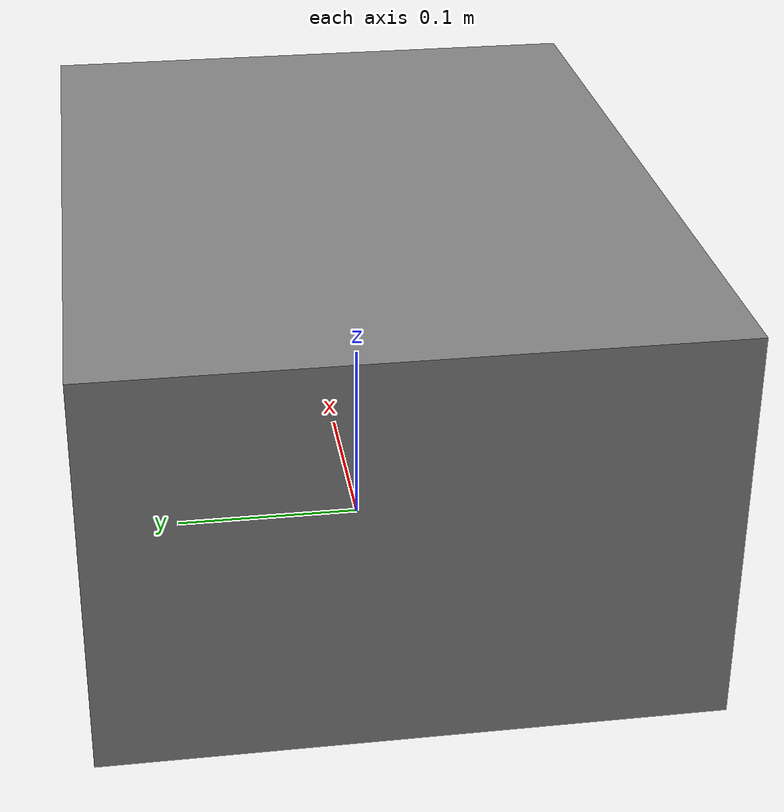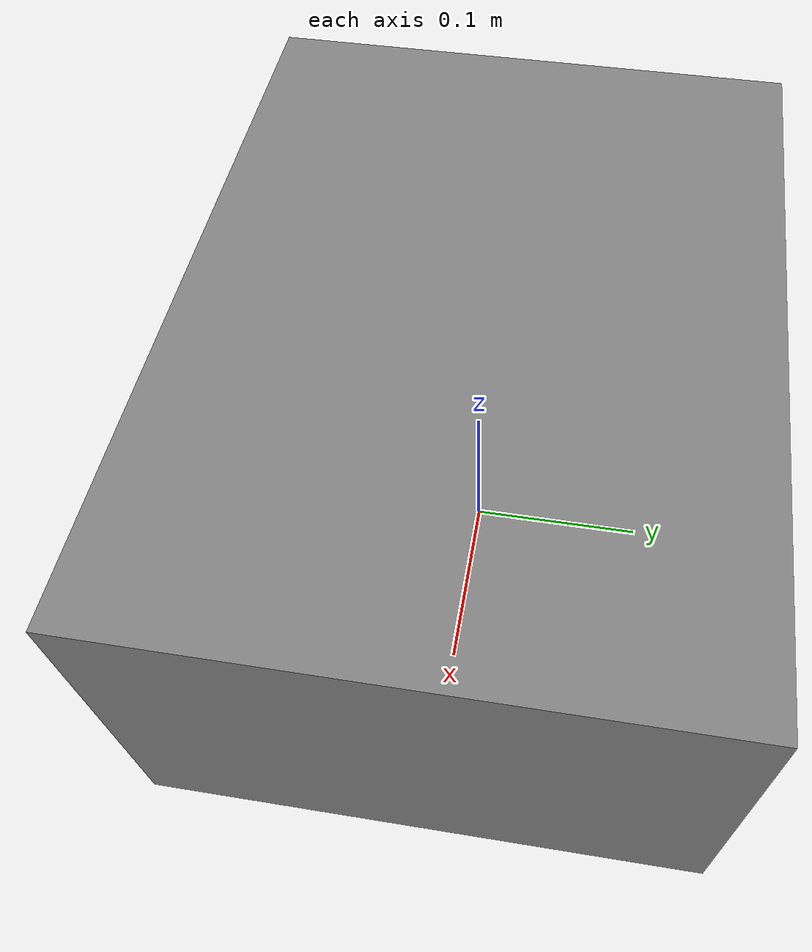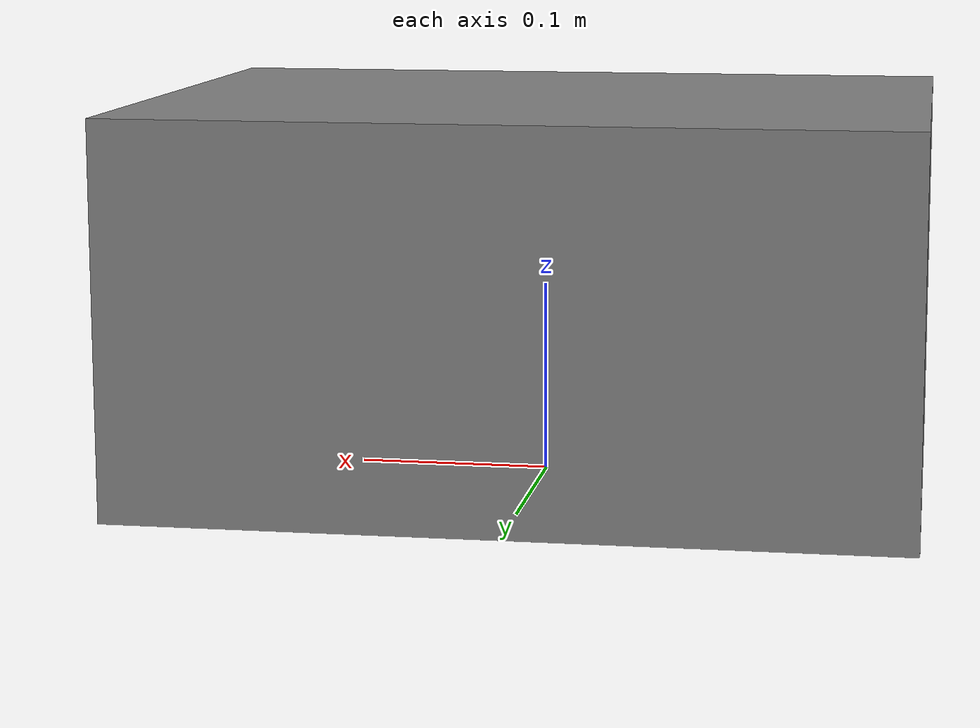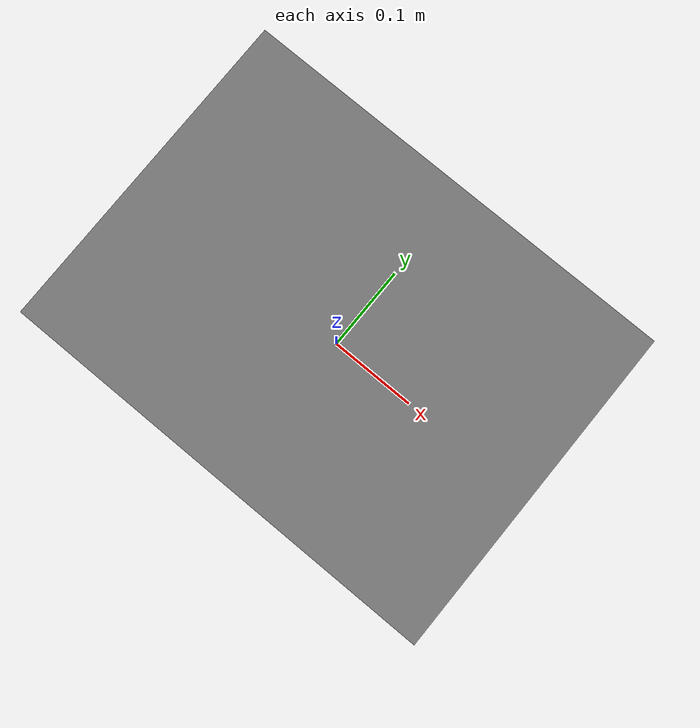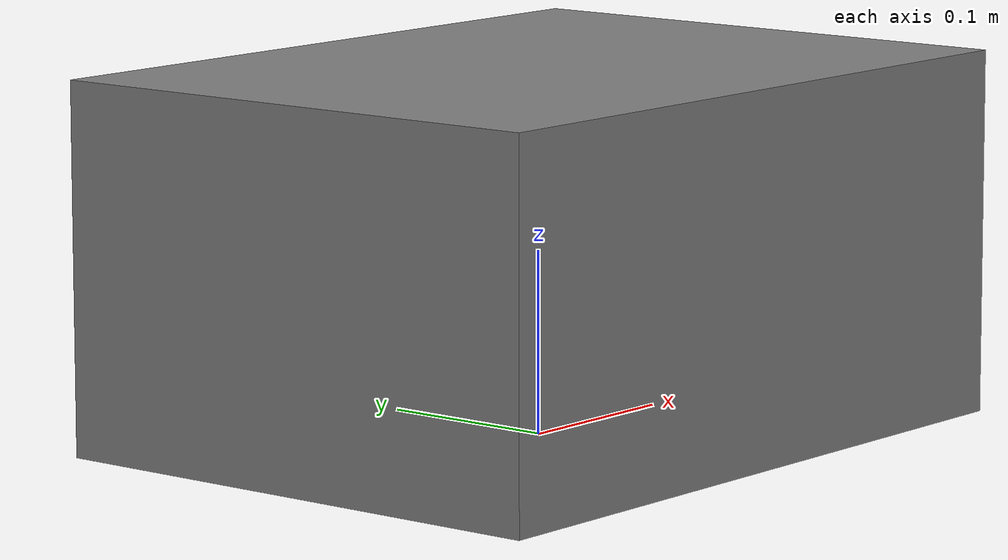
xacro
<?xml version="1.0"?>
<robot
  xmlns:xacro="http://ros.org/wiki/xacro"
  xmlns:controller="http://playerstage.sourceforge.net/gazebo/xmlschema/#controller"
  xmlns:interface="http://playerstage.sourceforge.net/gazebo/xmlschema/#interface"
  xmlns:sensor="http://playerstage.sourceforge.net/gazebo/xmlschema/#sensor"
  name="robot_sensor">

<xacro:property name="M_PI" value="3.14159265359"/>

<link name="base_footprint">
</link>

<link name="base_link">
  <visual>
    <origin xyz="0 0 0" rpy="0 0 0" />
    <geometry>
      <box size="0.4 0.3 0.2"/>
    </geometry>
    <material name="silver" >
      <color rgba="0.5 0.5 0.5 1" />
    </material>
  </visual>
  <collision>
    <origin xyz="0 0 0" rpy="0 0 0" />
    <geometry>
      <box size="0.4 0.3 0.2"/>
    </geometry>
  </collision>
  <inertial>
      <mass value="1.0" />
      <origin xyz="0 0 0" />
      <inertia ixx="${0.0833333 * 1.0 * (0.3*0.3 + 0.2*0.2)}" ixy="0.0" ixz="0.0"
        iyy="${0.0833333 * 1.0 * (0.4*0.4 + 0.2*0.2)}" iyz="0.0"
        izz="${0.0833333 * 1.0 * (0.4*0.4 + 0.3*0.3)}" />
    </inertial>
</link>

<joint name="base_to_bf_joint" type="fixed">
  <parent link="base_footprint" />
  <child link="base_link" />
  <origin xyz="0 0 0.1" />
</joint>

<!-- 2D LASER -->
<link name="laser2d">
</link>

<joint name="laser2d_to_base_joint" type="fixed">
  <parent link="base_link" />
  <child link="laser2d" />
  <origin xyz="0 0 0.2" />
</joint>

<gazebo reference="laser2d">
    <sensor type="rmagine_optix_spherical" name="laser2d">
      <pose>0 0 0 0 0 0</pose>
      <always_on>true</always_on>
      <update_rate>60</update_rate>
      <visualize>false</visualize>
      <pre_alloc_mem>true</pre_alloc_mem>

      <ray>
        <scan>
          <horizontal>
            <min_angle>${-M_PI}</min_angle>
            <increment>${1.0 * M_PI / 180.0}</increment>
            <samples>360</samples>
          </horizontal>
        </scan>

        <range>
          <min>0.0</min>
          <max>10.0</max>
        </range>

        <noise>
          <type>gaussian</type>
          <mean>0.0</mean>
          <stddev>0.01</stddev>
        </noise>

      </ray>

      <plugin name="rmagine_ros_laser2d" filename="librmagine_optix_ros_gzplugin.so">
          <frame>laser2d</frame>
          <outputs>
            <output name="scan">
              <msg>sensor_msgs/LaserScan</msg>
              <topic>laser2d/scan</topic>
            </output>

            <output name="pcl">
              <msg>sensor_msgs/PointCloud</msg>
              <topic>laser2d/pcl</topic>
            </output>
          </outputs>
      </plugin>
    </sensor>
</gazebo>

<!-- 3D LASER -->
<link name="laser3d">
</link>

<joint name="laser3d_to_base_joint" type="fixed">
  <parent link="base_link" />
  <child link="laser3d" />
  <origin xyz="0 0 1.0" />
</joint>

<gazebo reference="laser3d">
    <sensor type="rmagine_optix_spherical" name="laser3d">
      <pose>0 0 0 0 0 0</pose>
      <always_on>true</always_on>
      <update_rate>60</update_rate>
      <visualize>false</visualize>
      <pre_alloc_mem>true</pre_alloc_mem>

      <ray>
        <scan>
          <horizontal>
            <min_angle>${-M_PI}</min_angle>
            <increment>${1.0 * M_PI / 180.0}</increment>
            <samples>360</samples>
          </horizontal>
          <vertical>
            <min_angle>${-60.0 * M_PI / 180.0}</min_angle>
            <increment>${1.0 * M_PI / 180.0}</increment>
            <samples>120</samples>
          </vertical>
        </scan>

        <range>
          <min>0.0</min>
          <max>80.0</max>
        </range>

        <noise>
          <type>gaussian</type>
          <mean>0.0</mean>
          <stddev>0.01</stddev>
        </noise>
      </ray>

      <plugin name="rmagine_ros_laser3d" filename="librmagine_optix_ros_gzplugin.so">
          <frame>laser3d</frame>
          <outputs>
            <output name="pcl">
              <msg>sensor_msgs/PointCloud</msg>
              <topic>laser3d/pcl</topic>
            </output>

            <output name="pcl2">
              <msg>sensor_msgs/PointCloud2</msg>
              <topic>laser3d/pcl2</topic>
            </output>
          </outputs>
      </plugin>
    </sensor>
</gazebo>

</robot>
